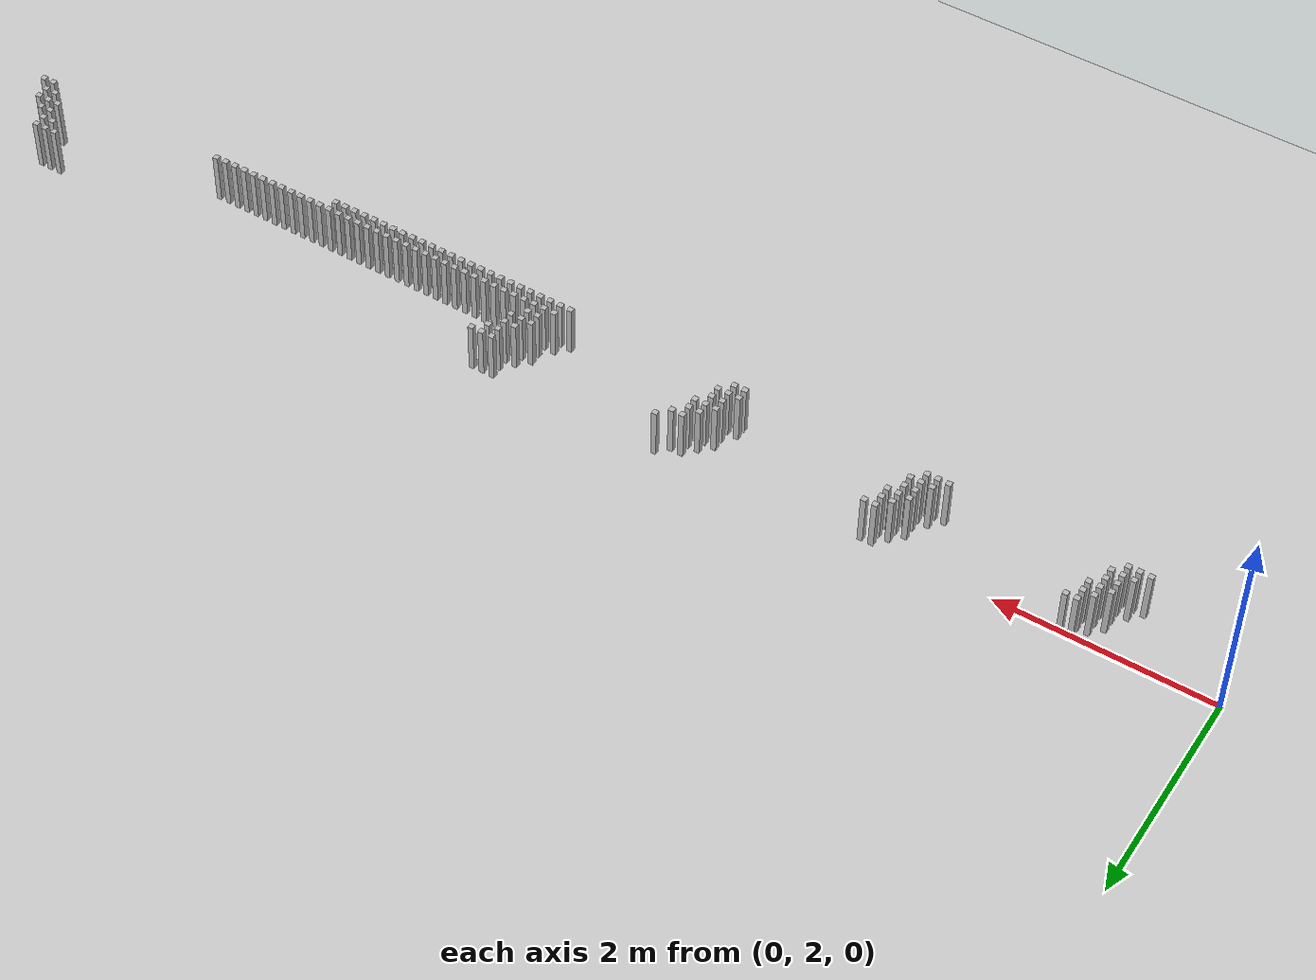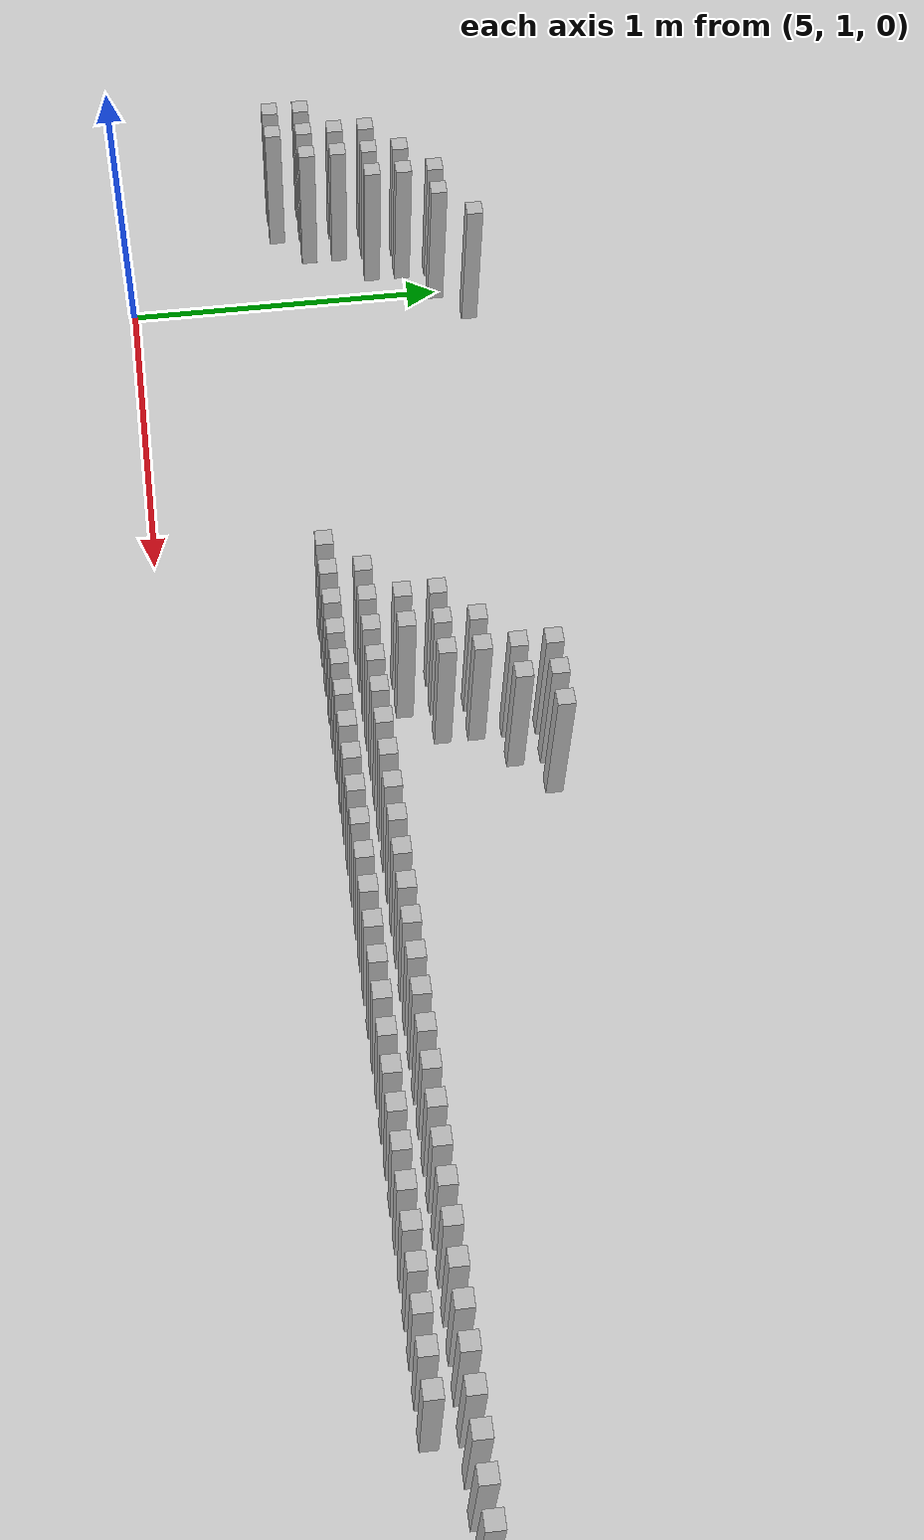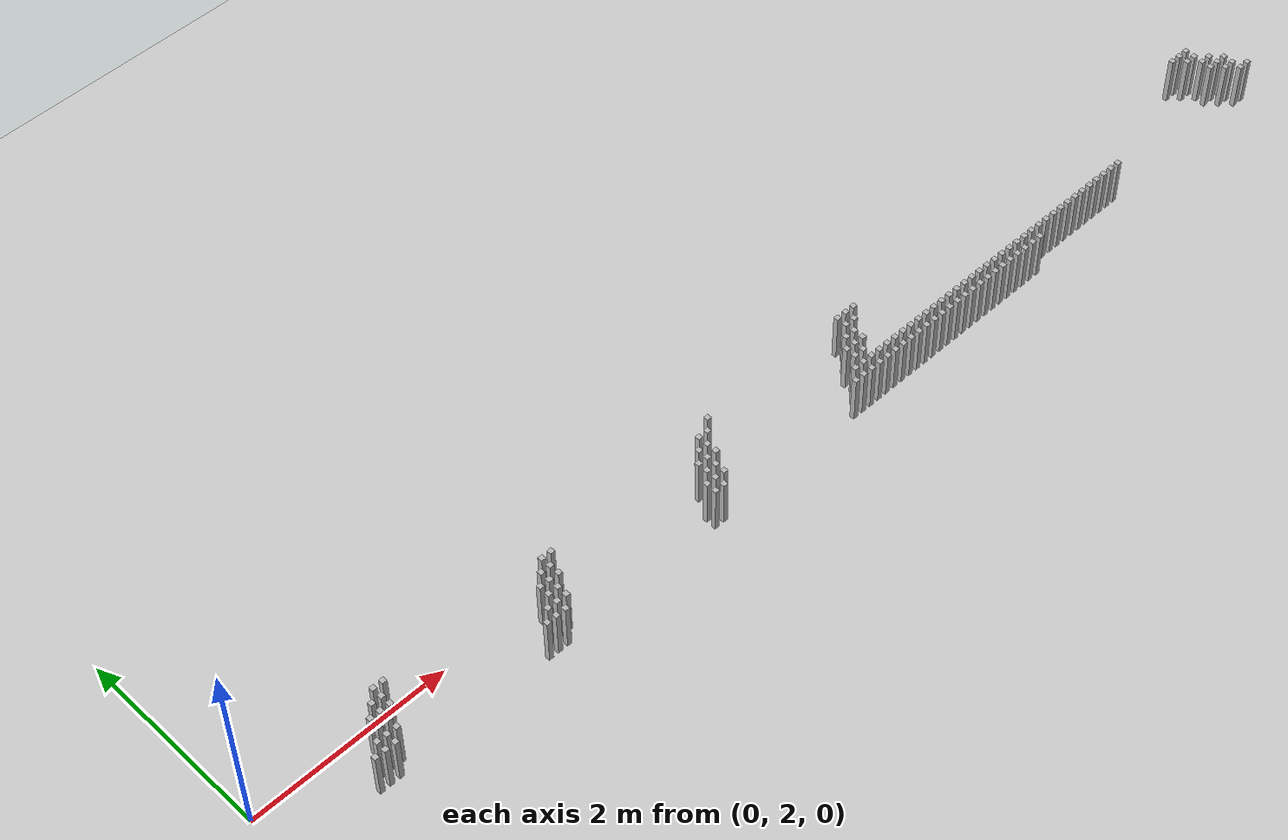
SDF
<sdf version="1.6">
 <world name="default_world">
  <include><uri>model://sun</uri></include>
  <include><uri>model://ground_plane</uri></include>
  <model name="wall_784">
   <static>true</static>
   <link name="link">
    <collision name="collision"><geometry><box><size>0.05 0.05 0.5</size></box></geometry></collision>
    <visual name="visual"><geometry><box><size>0.05 0.05 0.5</size></box></geometry></visual>
    <pose>5.1000000000000005 2.1 0.25 0 0 0</pose>
   </link>
  </model>
  <model name="wall_785">
   <static>true</static>
   <link name="link">
    <collision name="collision"><geometry><box><size>0.05 0.05 0.5</size></box></geometry></collision>
    <visual name="visual"><geometry><box><size>0.05 0.05 0.5</size></box></geometry></visual>
    <pose>6.7 2.1 0.25 0 0 0</pose>
   </link>
  </model>
  <model name="wall_786">
   <static>true</static>
   <link name="link">
    <collision name="collision"><geometry><box><size>0.05 0.05 0.5</size></box></geometry></collision>
    <visual name="visual"><geometry><box><size>0.05 0.05 0.5</size></box></geometry></visual>
    <pose>6.800000000000001 2.1 0.25 0 0 0</pose>
   </link>
  </model>
  <model name="wall_787">
   <static>true</static>
   <link name="link">
    <collision name="collision"><geometry><box><size>0.05 0.05 0.5</size></box></geometry></collision>
    <visual name="visual"><geometry><box><size>0.05 0.05 0.5</size></box></geometry></visual>
    <pose>6.9 2.1 0.25 0 0 0</pose>
   </link>
  </model>
  <model name="wall_788">
   <static>true</static>
   <link name="link">
    <collision name="collision"><geometry><box><size>0.05 0.05 0.5</size></box></geometry></collision>
    <visual name="visual"><geometry><box><size>0.05 0.05 0.5</size></box></geometry></visual>
    <pose>11.3 2.1 0.25 0 0 0</pose>
   </link>
  </model>
  <model name="wall_789">
   <static>true</static>
   <link name="link">
    <collision name="collision"><geometry><box><size>0.05 0.05 0.5</size></box></geometry></collision>
    <visual name="visual"><geometry><box><size>0.05 0.05 0.5</size></box></geometry></visual>
    <pose>11.4 2.1 0.25 0 0 0</pose>
   </link>
  </model>
  <model name="wall_790">
   <static>true</static>
   <link name="link">
    <collision name="collision"><geometry><box><size>0.05 0.05 0.5</size></box></geometry></collision>
    <visual name="visual"><geometry><box><size>0.05 0.05 0.5</size></box></geometry></visual>
    <pose>11.5 2.1 0.25 0 0 0</pose>
   </link>
  </model>
  <model name="wall_791">
   <static>true</static>
   <link name="link">
    <collision name="collision"><geometry><box><size>0.05 0.05 0.5</size></box></geometry></collision>
    <visual name="visual"><geometry><box><size>0.05 0.05 0.5</size></box></geometry></visual>
    <pose>1.3 2.0 0.25 0 0 0</pose>
   </link>
  </model>
  <model name="wall_792">
   <static>true</static>
   <link name="link">
    <collision name="collision"><geometry><box><size>0.05 0.05 0.5</size></box></geometry></collision>
    <visual name="visual"><geometry><box><size>0.05 0.05 0.5</size></box></geometry></visual>
    <pose>1.4000000000000001 2.0 0.25 0 0 0</pose>
   </link>
  </model>
  <model name="wall_793">
   <static>true</static>
   <link name="link">
    <collision name="collision"><geometry><box><size>0.05 0.05 0.5</size></box></geometry></collision>
    <visual name="visual"><geometry><box><size>0.05 0.05 0.5</size></box></geometry></visual>
    <pose>3.1 2.0 0.25 0 0 0</pose>
   </link>
  </model>
  <model name="wall_794">
   <static>true</static>
   <link name="link">
    <collision name="collision"><geometry><box><size>0.05 0.05 0.5</size></box></geometry></collision>
    <visual name="visual"><geometry><box><size>0.05 0.05 0.5</size></box></geometry></visual>
    <pose>3.2 2.0 0.25 0 0 0</pose>
   </link>
  </model>
  <model name="wall_795">
   <static>true</static>
   <link name="link">
    <collision name="collision"><geometry><box><size>0.05 0.05 0.5</size></box></geometry></collision>
    <visual name="visual"><geometry><box><size>0.05 0.05 0.5</size></box></geometry></visual>
    <pose>4.9 2.0 0.25 0 0 0</pose>
   </link>
  </model>
  <model name="wall_796">
   <static>true</static>
   <link name="link">
    <collision name="collision"><geometry><box><size>0.05 0.05 0.5</size></box></geometry></collision>
    <visual name="visual"><geometry><box><size>0.05 0.05 0.5</size></box></geometry></visual>
    <pose>5.0 2.0 0.25 0 0 0</pose>
   </link>
  </model>
  <model name="wall_797">
   <static>true</static>
   <link name="link">
    <collision name="collision"><geometry><box><size>0.05 0.05 0.5</size></box></geometry></collision>
    <visual name="visual"><geometry><box><size>0.05 0.05 0.5</size></box></geometry></visual>
    <pose>6.7 2.0 0.25 0 0 0</pose>
   </link>
  </model>
  <model name="wall_798">
   <static>true</static>
   <link name="link">
    <collision name="collision"><geometry><box><size>0.05 0.05 0.5</size></box></geometry></collision>
    <visual name="visual"><geometry><box><size>0.05 0.05 0.5</size></box></geometry></visual>
    <pose>6.800000000000001 2.0 0.25 0 0 0</pose>
   </link>
  </model>
  <model name="wall_799">
   <static>true</static>
   <link name="link">
    <collision name="collision"><geometry><box><size>0.05 0.05 0.5</size></box></geometry></collision>
    <visual name="visual"><geometry><box><size>0.05 0.05 0.5</size></box></geometry></visual>
    <pose>11.4 2.0 0.25 0 0 0</pose>
   </link>
  </model>
  <model name="wall_800">
   <static>true</static>
   <link name="link">
    <collision name="collision"><geometry><box><size>0.05 0.05 0.5</size></box></geometry></collision>
    <visual name="visual"><geometry><box><size>0.05 0.05 0.5</size></box></geometry></visual>
    <pose>11.5 2.0 0.25 0 0 0</pose>
   </link>
  </model>
  <model name="wall_801">
   <static>true</static>
   <link name="link">
    <collision name="collision"><geometry><box><size>0.05 0.05 0.5</size></box></geometry></collision>
    <visual name="visual"><geometry><box><size>0.05 0.05 0.5</size></box></geometry></visual>
    <pose>1.2000000000000002 1.9000000000000001 0.25 0 0 0</pose>
   </link>
  </model>
  <model name="wall_802">
   <static>true</static>
   <link name="link">
    <collision name="collision"><geometry><box><size>0.05 0.05 0.5</size></box></geometry></collision>
    <visual name="visual"><geometry><box><size>0.05 0.05 0.5</size></box></geometry></visual>
    <pose>1.3 1.9000000000000001 0.25 0 0 0</pose>
   </link>
  </model>
  <model name="wall_803">
   <static>true</static>
   <link name="link">
    <collision name="collision"><geometry><box><size>0.05 0.05 0.5</size></box></geometry></collision>
    <visual name="visual"><geometry><box><size>0.05 0.05 0.5</size></box></geometry></visual>
    <pose>3.0 1.9000000000000001 0.25 0 0 0</pose>
   </link>
  </model>
  <model name="wall_804">
   <static>true</static>
   <link name="link">
    <collision name="collision"><geometry><box><size>0.05 0.05 0.5</size></box></geometry></collision>
    <visual name="visual"><geometry><box><size>0.05 0.05 0.5</size></box></geometry></visual>
    <pose>3.1 1.9000000000000001 0.25 0 0 0</pose>
   </link>
  </model>
  <model name="wall_805">
   <static>true</static>
   <link name="link">
    <collision name="collision"><geometry><box><size>0.05 0.05 0.5</size></box></geometry></collision>
    <visual name="visual"><geometry><box><size>0.05 0.05 0.5</size></box></geometry></visual>
    <pose>4.800000000000001 1.9000000000000001 0.25 0 0 0</pose>
   </link>
  </model>
  <model name="wall_806">
   <static>true</static>
   <link name="link">
    <collision name="collision"><geometry><box><size>0.05 0.05 0.5</size></box></geometry></collision>
    <visual name="visual"><geometry><box><size>0.05 0.05 0.5</size></box></geometry></visual>
    <pose>4.9 1.9000000000000001 0.25 0 0 0</pose>
   </link>
  </model>
  <model name="wall_807">
   <static>true</static>
   <link name="link">
    <collision name="collision"><geometry><box><size>0.05 0.05 0.5</size></box></geometry></collision>
    <visual name="visual"><geometry><box><size>0.05 0.05 0.5</size></box></geometry></visual>
    <pose>6.6000000000000005 1.9000000000000001 0.25 0 0 0</pose>
   </link>
  </model>
  <model name="wall_808">
   <static>true</static>
   <link name="link">
    <collision name="collision"><geometry><box><size>0.05 0.05 0.5</size></box></geometry></collision>
    <visual name="visual"><geometry><box><size>0.05 0.05 0.5</size></box></geometry></visual>
    <pose>6.7 1.9000000000000001 0.25 0 0 0</pose>
   </link>
  </model>
  <model name="wall_809">
   <static>true</static>
   <link name="link">
    <collision name="collision"><geometry><box><size>0.05 0.05 0.5</size></box></geometry></collision>
    <visual name="visual"><geometry><box><size>0.05 0.05 0.5</size></box></geometry></visual>
    <pose>11.5 1.9000000000000001 0.25 0 0 0</pose>
   </link>
  </model>
  <model name="wall_810">
   <static>true</static>
   <link name="link">
    <collision name="collision"><geometry><box><size>0.05 0.05 0.5</size></box></geometry></collision>
    <visual name="visual"><geometry><box><size>0.05 0.05 0.5</size></box></geometry></visual>
    <pose>11.600000000000001 1.9000000000000001 0.25 0 0 0</pose>
   </link>
  </model>
  <model name="wall_811">
   <static>true</static>
   <link name="link">
    <collision name="collision"><geometry><box><size>0.05 0.05 0.5</size></box></geometry></collision>
    <visual name="visual"><geometry><box><size>0.05 0.05 0.5</size></box></geometry></visual>
    <pose>1.1 1.8 0.25 0 0 0</pose>
   </link>
  </model>
  <model name="wall_812">
   <static>true</static>
   <link name="link">
    <collision name="collision"><geometry><box><size>0.05 0.05 0.5</size></box></geometry></collision>
    <visual name="visual"><geometry><box><size>0.05 0.05 0.5</size></box></geometry></visual>
    <pose>1.2000000000000002 1.8 0.25 0 0 0</pose>
   </link>
  </model>
  <model name="wall_813">
   <static>true</static>
   <link name="link">
    <collision name="collision"><geometry><box><size>0.05 0.05 0.5</size></box></geometry></collision>
    <visual name="visual"><geometry><box><size>0.05 0.05 0.5</size></box></geometry></visual>
    <pose>1.3 1.8 0.25 0 0 0</pose>
   </link>
  </model>
  <model name="wall_814">
   <static>true</static>
   <link name="link">
    <collision name="collision"><geometry><box><size>0.05 0.05 0.5</size></box></geometry></collision>
    <visual name="visual"><geometry><box><size>0.05 0.05 0.5</size></box></geometry></visual>
    <pose>2.9000000000000004 1.8 0.25 0 0 0</pose>
   </link>
  </model>
  <model name="wall_815">
   <static>true</static>
   <link name="link">
    <collision name="collision"><geometry><box><size>0.05 0.05 0.5</size></box></geometry></collision>
    <visual name="visual"><geometry><box><size>0.05 0.05 0.5</size></box></geometry></visual>
    <pose>3.0 1.8 0.25 0 0 0</pose>
   </link>
  </model>
  <model name="wall_816">
   <static>true</static>
   <link name="link">
    <collision name="collision"><geometry><box><size>0.05 0.05 0.5</size></box></geometry></collision>
    <visual name="visual"><geometry><box><size>0.05 0.05 0.5</size></box></geometry></visual>
    <pose>3.1 1.8 0.25 0 0 0</pose>
   </link>
  </model>
  <model name="wall_817">
   <static>true</static>
   <link name="link">
    <collision name="collision"><geometry><box><size>0.05 0.05 0.5</size></box></geometry></collision>
    <visual name="visual"><geometry><box><size>0.05 0.05 0.5</size></box></geometry></visual>
    <pose>4.7 1.8 0.25 0 0 0</pose>
   </link>
  </model>
  <model name="wall_818">
   <static>true</static>
   <link name="link">
    <collision name="collision"><geometry><box><size>0.05 0.05 0.5</size></box></geometry></collision>
    <visual name="visual"><geometry><box><size>0.05 0.05 0.5</size></box></geometry></visual>
    <pose>4.800000000000001 1.8 0.25 0 0 0</pose>
   </link>
  </model>
  <model name="wall_819">
   <static>true</static>
   <link name="link">
    <collision name="collision"><geometry><box><size>0.05 0.05 0.5</size></box></geometry></collision>
    <visual name="visual"><geometry><box><size>0.05 0.05 0.5</size></box></geometry></visual>
    <pose>4.9 1.8 0.25 0 0 0</pose>
   </link>
  </model>
  <model name="wall_820">
   <static>true</static>
   <link name="link">
    <collision name="collision"><geometry><box><size>0.05 0.05 0.5</size></box></geometry></collision>
    <visual name="visual"><geometry><box><size>0.05 0.05 0.5</size></box></geometry></visual>
    <pose>6.5 1.8 0.25 0 0 0</pose>
   </link>
  </model>
  <model name="wall_821">
   <static>true</static>
   <link name="link">
    <collision name="collision"><geometry><box><size>0.05 0.05 0.5</size></box></geometry></collision>
    <visual name="visual"><geometry><box><size>0.05 0.05 0.5</size></box></geometry></visual>
    <pose>6.6000000000000005 1.8 0.25 0 0 0</pose>
   </link>
  </model>
  <model name="wall_822">
   <static>true</static>
   <link name="link">
    <collision name="collision"><geometry><box><size>0.05 0.05 0.5</size></box></geometry></collision>
    <visual name="visual"><geometry><box><size>0.05 0.05 0.5</size></box></geometry></visual>
    <pose>6.7 1.8 0.25 0 0 0</pose>
   </link>
  </model>
  <model name="wall_823">
   <static>true</static>
   <link name="link">
    <collision name="collision"><geometry><box><size>0.05 0.05 0.5</size></box></geometry></collision>
    <visual name="visual"><geometry><box><size>0.05 0.05 0.5</size></box></geometry></visual>
    <pose>11.5 1.8 0.25 0 0 0</pose>
   </link>
  </model>
  <model name="wall_824">
   <static>true</static>
   <link name="link">
    <collision name="collision"><geometry><box><size>0.05 0.05 0.5</size></box></geometry></collision>
    <visual name="visual"><geometry><box><size>0.05 0.05 0.5</size></box></geometry></visual>
    <pose>11.600000000000001 1.8 0.25 0 0 0</pose>
   </link>
  </model>
  <model name="wall_825">
   <static>true</static>
   <link name="link">
    <collision name="collision"><geometry><box><size>0.05 0.05 0.5</size></box></geometry></collision>
    <visual name="visual"><geometry><box><size>0.05 0.05 0.5</size></box></geometry></visual>
    <pose>11.700000000000001 1.8 0.25 0 0 0</pose>
   </link>
  </model>
  <model name="wall_826">
   <static>true</static>
   <link name="link">
    <collision name="collision"><geometry><box><size>0.05 0.05 0.5</size></box></geometry></collision>
    <visual name="visual"><geometry><box><size>0.05 0.05 0.5</size></box></geometry></visual>
    <pose>1.1 1.7000000000000002 0.25 0 0 0</pose>
   </link>
  </model>
  <model name="wall_827">
   <static>true</static>
   <link name="link">
    <collision name="collision"><geometry><box><size>0.05 0.05 0.5</size></box></geometry></collision>
    <visual name="visual"><geometry><box><size>0.05 0.05 0.5</size></box></geometry></visual>
    <pose>1.2000000000000002 1.7000000000000002 0.25 0 0 0</pose>
   </link>
  </model>
  <model name="wall_828">
   <static>true</static>
   <link name="link">
    <collision name="collision"><geometry><box><size>0.05 0.05 0.5</size></box></geometry></collision>
    <visual name="visual"><geometry><box><size>0.05 0.05 0.5</size></box></geometry></visual>
    <pose>2.9000000000000004 1.7000000000000002 0.25 0 0 0</pose>
   </link>
  </model>
  <model name="wall_829">
   <static>true</static>
   <link name="link">
    <collision name="collision"><geometry><box><size>0.05 0.05 0.5</size></box></geometry></collision>
    <visual name="visual"><geometry><box><size>0.05 0.05 0.5</size></box></geometry></visual>
    <pose>3.0 1.7000000000000002 0.25 0 0 0</pose>
   </link>
  </model>
  <model name="wall_830">
   <static>true</static>
   <link name="link">
    <collision name="collision"><geometry><box><size>0.05 0.05 0.5</size></box></geometry></collision>
    <visual name="visual"><geometry><box><size>0.05 0.05 0.5</size></box></geometry></visual>
    <pose>4.7 1.7000000000000002 0.25 0 0 0</pose>
   </link>
  </model>
  <model name="wall_831">
   <static>true</static>
   <link name="link">
    <collision name="collision"><geometry><box><size>0.05 0.05 0.5</size></box></geometry></collision>
    <visual name="visual"><geometry><box><size>0.05 0.05 0.5</size></box></geometry></visual>
    <pose>4.800000000000001 1.7000000000000002 0.25 0 0 0</pose>
   </link>
  </model>
  <model name="wall_832">
   <static>true</static>
   <link name="link">
    <collision name="collision"><geometry><box><size>0.05 0.05 0.5</size></box></geometry></collision>
    <visual name="visual"><geometry><box><size>0.05 0.05 0.5</size></box></geometry></visual>
    <pose>6.5 1.7000000000000002 0.25 0 0 0</pose>
   </link>
  </model>
  <model name="wall_833">
   <static>true</static>
   <link name="link">
    <collision name="collision"><geometry><box><size>0.05 0.05 0.5</size></box></geometry></collision>
    <visual name="visual"><geometry><box><size>0.05 0.05 0.5</size></box></geometry></visual>
    <pose>6.6000000000000005 1.7000000000000002 0.25 0 0 0</pose>
   </link>
  </model>
  <model name="wall_834">
   <static>true</static>
   <link name="link">
    <collision name="collision"><geometry><box><size>0.05 0.05 0.5</size></box></geometry></collision>
    <visual name="visual"><geometry><box><size>0.05 0.05 0.5</size></box></geometry></visual>
    <pose>11.600000000000001 1.7000000000000002 0.25 0 0 0</pose>
   </link>
  </model>
  <model name="wall_835">
   <static>true</static>
   <link name="link">
    <collision name="collision"><geometry><box><size>0.05 0.05 0.5</size></box></geometry></collision>
    <visual name="visual"><geometry><box><size>0.05 0.05 0.5</size></box></geometry></visual>
    <pose>11.700000000000001 1.7000000000000002 0.25 0 0 0</pose>
   </link>
  </model>
  <model name="wall_836">
   <static>true</static>
   <link name="link">
    <collision name="collision"><geometry><box><size>0.05 0.05 0.5</size></box></geometry></collision>
    <visual name="visual"><geometry><box><size>0.05 0.05 0.5</size></box></geometry></visual>
    <pose>1.0 1.6 0.25 0 0 0</pose>
   </link>
  </model>
  <model name="wall_837">
   <static>true</static>
   <link name="link">
    <collision name="collision"><geometry><box><size>0.05 0.05 0.5</size></box></geometry></collision>
    <visual name="visual"><geometry><box><size>0.05 0.05 0.5</size></box></geometry></visual>
    <pose>1.1 1.6 0.25 0 0 0</pose>
   </link>
  </model>
  <model name="wall_838">
   <static>true</static>
   <link name="link">
    <collision name="collision"><geometry><box><size>0.05 0.05 0.5</size></box></geometry></collision>
    <visual name="visual"><geometry><box><size>0.05 0.05 0.5</size></box></geometry></visual>
    <pose>1.2000000000000002 1.6 0.25 0 0 0</pose>
   </link>
  </model>
  <model name="wall_839">
   <static>true</static>
   <link name="link">
    <collision name="collision"><geometry><box><size>0.05 0.05 0.5</size></box></geometry></collision>
    <visual name="visual"><geometry><box><size>0.05 0.05 0.5</size></box></geometry></visual>
    <pose>2.8000000000000003 1.6 0.25 0 0 0</pose>
   </link>
  </model>
  <model name="wall_840">
   <static>true</static>
   <link name="link">
    <collision name="collision"><geometry><box><size>0.05 0.05 0.5</size></box></geometry></collision>
    <visual name="visual"><geometry><box><size>0.05 0.05 0.5</size></box></geometry></visual>
    <pose>2.9000000000000004 1.6 0.25 0 0 0</pose>
   </link>
  </model>
  <model name="wall_841">
   <static>true</static>
   <link name="link">
    <collision name="collision"><geometry><box><size>0.05 0.05 0.5</size></box></geometry></collision>
    <visual name="visual"><geometry><box><size>0.05 0.05 0.5</size></box></geometry></visual>
    <pose>3.0 1.6 0.25 0 0 0</pose>
   </link>
  </model>
  <model name="wall_842">
   <static>true</static>
   <link name="link">
    <collision name="collision"><geometry><box><size>0.05 0.05 0.5</size></box></geometry></collision>
    <visual name="visual"><geometry><box><size>0.05 0.05 0.5</size></box></geometry></visual>
    <pose>4.6000000000000005 1.6 0.25 0 0 0</pose>
   </link>
  </model>
  <model name="wall_843">
   <static>true</static>
   <link name="link">
    <collision name="collision"><geometry><box><size>0.05 0.05 0.5</size></box></geometry></collision>
    <visual name="visual"><geometry><box><size>0.05 0.05 0.5</size></box></geometry></visual>
    <pose>4.7 1.6 0.25 0 0 0</pose>
   </link>
  </model>
  <model name="wall_844">
   <static>true</static>
   <link name="link">
    <collision name="collision"><geometry><box><size>0.05 0.05 0.5</size></box></geometry></collision>
    <visual name="visual"><geometry><box><size>0.05 0.05 0.5</size></box></geometry></visual>
    <pose>4.800000000000001 1.6 0.25 0 0 0</pose>
   </link>
  </model>
  <model name="wall_845">
   <static>true</static>
   <link name="link">
    <collision name="collision"><geometry><box><size>0.05 0.05 0.5</size></box></geometry></collision>
    <visual name="visual"><geometry><box><size>0.05 0.05 0.5</size></box></geometry></visual>
    <pose>6.4 1.6 0.25 0 0 0</pose>
   </link>
  </model>
  <model name="wall_846">
   <static>true</static>
   <link name="link">
    <collision name="collision"><geometry><box><size>0.05 0.05 0.5</size></box></geometry></collision>
    <visual name="visual"><geometry><box><size>0.05 0.05 0.5</size></box></geometry></visual>
    <pose>6.5 1.6 0.25 0 0 0</pose>
   </link>
  </model>
  <model name="wall_847">
   <static>true</static>
   <link name="link">
    <collision name="collision"><geometry><box><size>0.05 0.05 0.5</size></box></geometry></collision>
    <visual name="visual"><geometry><box><size>0.05 0.05 0.5</size></box></geometry></visual>
    <pose>6.6000000000000005 1.6 0.25 0 0 0</pose>
   </link>
  </model>
  <model name="wall_848">
   <static>true</static>
   <link name="link">
    <collision name="collision"><geometry><box><size>0.05 0.05 0.5</size></box></geometry></collision>
    <visual name="visual"><geometry><box><size>0.05 0.05 0.5</size></box></geometry></visual>
    <pose>6.7 1.6 0.25 0 0 0</pose>
   </link>
  </model>
  <model name="wall_849">
   <static>true</static>
   <link name="link">
    <collision name="collision"><geometry><box><size>0.05 0.05 0.5</size></box></geometry></collision>
    <visual name="visual"><geometry><box><size>0.05 0.05 0.5</size></box></geometry></visual>
    <pose>6.800000000000001 1.6 0.25 0 0 0</pose>
   </link>
  </model>
  <model name="wall_850">
   <static>true</static>
   <link name="link">
    <collision name="collision"><geometry><box><size>0.05 0.05 0.5</size></box></geometry></collision>
    <visual name="visual"><geometry><box><size>0.05 0.05 0.5</size></box></geometry></visual>
    <pose>6.9 1.6 0.25 0 0 0</pose>
   </link>
  </model>
  <model name="wall_851">
   <static>true</static>
   <link name="link">
    <collision name="collision"><geometry><box><size>0.05 0.05 0.5</size></box></geometry></collision>
    <visual name="visual"><geometry><box><size>0.05 0.05 0.5</size></box></geometry></visual>
    <pose>7.0 1.6 0.25 0 0 0</pose>
   </link>
  </model>
  <model name="wall_852">
   <static>true</static>
   <link name="link">
    <collision name="collision"><geometry><box><size>0.05 0.05 0.5</size></box></geometry></collision>
    <visual name="visual"><geometry><box><size>0.05 0.05 0.5</size></box></geometry></visual>
    <pose>7.1000000000000005 1.6 0.25 0 0 0</pose>
   </link>
  </model>
  <model name="wall_853">
   <static>true</static>
   <link name="link">
    <collision name="collision"><geometry><box><size>0.05 0.05 0.5</size></box></geometry></collision>
    <visual name="visual"><geometry><box><size>0.05 0.05 0.5</size></box></geometry></visual>
    <pose>7.2 1.6 0.25 0 0 0</pose>
   </link>
  </model>
  <model name="wall_854">
   <static>true</static>
   <link name="link">
    <collision name="collision"><geometry><box><size>0.05 0.05 0.5</size></box></geometry></collision>
    <visual name="visual"><geometry><box><size>0.05 0.05 0.5</size></box></geometry></visual>
    <pose>7.300000000000001 1.6 0.25 0 0 0</pose>
   </link>
  </model>
  <model name="wall_855">
   <static>true</static>
   <link name="link">
    <collision name="collision"><geometry><box><size>0.05 0.05 0.5</size></box></geometry></collision>
    <visual name="visual"><geometry><box><size>0.05 0.05 0.5</size></box></geometry></visual>
    <pose>7.4 1.6 0.25 0 0 0</pose>
   </link>
  </model>
  <model name="wall_856">
   <static>true</static>
   <link name="link">
    <collision name="collision"><geometry><box><size>0.05 0.05 0.5</size></box></geometry></collision>
    <visual name="visual"><geometry><box><size>0.05 0.05 0.5</size></box></geometry></visual>
    <pose>7.5 1.6 0.25 0 0 0</pose>
   </link>
  </model>
  <model name="wall_857">
   <static>true</static>
   <link name="link">
    <collision name="collision"><geometry><box><size>0.05 0.05 0.5</size></box></geometry></collision>
    <visual name="visual"><geometry><box><size>0.05 0.05 0.5</size></box></geometry></visual>
    <pose>7.6000000000000005 1.6 0.25 0 0 0</pose>
   </link>
  </model>
  <model name="wall_858">
   <static>true</static>
   <link name="link">
    <collision name="collision"><geometry><box><size>0.05 0.05 0.5</size></box></geometry></collision>
    <visual name="visual"><geometry><box><size>0.05 0.05 0.5</size></box></geometry></visual>
    <pose>7.7 1.6 0.25 0 0 0</pose>
   </link>
  </model>
  <model name="wall_859">
   <static>true</static>
   <link name="link">
    <collision name="collision"><geometry><box><size>0.05 0.05 0.5</size></box></geometry></collision>
    <visual name="visual"><geometry><box><size>0.05 0.05 0.5</size></box></geometry></visual>
    <pose>7.800000000000001 1.6 0.25 0 0 0</pose>
   </link>
  </model>
  <model name="wall_860">
   <static>true</static>
   <link name="link">
    <collision name="collision"><geometry><box><size>0.05 0.05 0.5</size></box></geometry></collision>
    <visual name="visual"><geometry><box><size>0.05 0.05 0.5</size></box></geometry></visual>
    <pose>7.9 1.6 0.25 0 0 0</pose>
   </link>
  </model>
  <model name="wall_861">
   <static>true</static>
   <link name="link">
    <collision name="collision"><geometry><box><size>0.05 0.05 0.5</size></box></geometry></collision>
    <visual name="visual"><geometry><box><size>0.05 0.05 0.5</size></box></geometry></visual>
    <pose>8.0 1.6 0.25 0 0 0</pose>
   </link>
  </model>
  <model name="wall_862">
   <static>true</static>
   <link name="link">
    <collision name="collision"><geometry><box><size>0.05 0.05 0.5</size></box></geometry></collision>
    <visual name="visual"><geometry><box><size>0.05 0.05 0.5</size></box></geometry></visual>
    <pose>8.1 1.6 0.25 0 0 0</pose>
   </link>
  </model>
  <model name="wall_863">
   <static>true</static>
   <link name="link">
    <collision name="collision"><geometry><box><size>0.05 0.05 0.5</size></box></geometry></collision>
    <visual name="visual"><geometry><box><size>0.05 0.05 0.5</size></box></geometry></visual>
    <pose>8.200000000000001 1.6 0.25 0 0 0</pose>
   </link>
  </model>
  <model name="wall_864">
   <static>true</static>
   <link name="link">
    <collision name="collision"><geometry><box><size>0.05 0.05 0.5</size></box></geometry></collision>
    <visual name="visual"><geometry><box><size>0.05 0.05 0.5</size></box></geometry></visual>
    <pose>8.3 1.6 0.25 0 0 0</pose>
   </link>
  </model>
  <model name="wall_865">
   <static>true</static>
   <link name="link">
    <collision name="collision"><geometry><box><size>0.05 0.05 0.5</size></box></geometry></collision>
    <visual name="visual"><geometry><box><size>0.05 0.05 0.5</size></box></geometry></visual>
    <pose>8.4 1.6 0.25 0 0 0</pose>
   </link>
  </model>
  <model name="wall_866">
   <static>true</static>
   <link name="link">
    <collision name="collision"><geometry><box><size>0.05 0.05 0.5</size></box></geometry></collision>
    <visual name="visual"><geometry><box><size>0.05 0.05 0.5</size></box></geometry></visual>
    <pose>8.5 1.6 0.25 0 0 0</pose>
   </link>
  </model>
  <model name="wall_867">
   <static>true</static>
   <link name="link">
    <collision name="collision"><geometry><box><size>0.05 0.05 0.5</size></box></geometry></collision>
    <visual name="visual"><geometry><box><size>0.05 0.05 0.5</size></box></geometry></visual>
    <pose>8.6 1.6 0.25 0 0 0</pose>
   </link>
  </model>
  <model name="wall_868">
   <static>true</static>
   <link name="link">
    <collision name="collision"><geometry><box><size>0.05 0.05 0.5</size></box></geometry></collision>
    <visual name="visual"><geometry><box><size>0.05 0.05 0.5</size></box></geometry></visual>
    <pose>8.700000000000001 1.6 0.25 0 0 0</pose>
   </link>
  </model>
  <model name="wall_869">
   <static>true</static>
   <link name="link">
    <collision name="collision"><geometry><box><size>0.05 0.05 0.5</size></box></geometry></collision>
    <visual name="visual"><geometry><box><size>0.05 0.05 0.5</size></box></geometry></visual>
    <pose>8.8 1.6 0.25 0 0 0</pose>
   </link>
  </model>
  <model name="wall_870">
   <static>true</static>
   <link name="link">
    <collision name="collision"><geometry><box><size>0.05 0.05 0.5</size></box></geometry></collision>
    <visual name="visual"><geometry><box><size>0.05 0.05 0.5</size></box></geometry></visual>
    <pose>8.9 1.6 0.25 0 0 0</pose>
   </link>
  </model>
  <model name="wall_871">
   <static>true</static>
   <link name="link">
    <collision name="collision"><geometry><box><size>0.05 0.05 0.5</size></box></geometry></collision>
    <visual name="visual"><geometry><box><size>0.05 0.05 0.5</size></box></geometry></visual>
    <pose>9.0 1.6 0.25 0 0 0</pose>
   </link>
  </model>
  <model name="wall_872">
   <static>true</static>
   <link name="link">
    <collision name="collision"><geometry><box><size>0.05 0.05 0.5</size></box></geometry></collision>
    <visual name="visual"><geometry><box><size>0.05 0.05 0.5</size></box></geometry></visual>
    <pose>9.1 1.6 0.25 0 0 0</pose>
   </link>
  </model>
  <model name="wall_873">
   <static>true</static>
   <link name="link">
    <collision name="collision"><geometry><box><size>0.05 0.05 0.5</size></box></geometry></collision>
    <visual name="visual"><geometry><box><size>0.05 0.05 0.5</size></box></geometry></visual>
    <pose>9.200000000000001 1.6 0.25 0 0 0</pose>
   </link>
  </model>
  <model name="wall_874">
   <static>true</static>
   <link name="link">
    <collision name="collision"><geometry><box><size>0.05 0.05 0.5</size></box></geometry></collision>
    <visual name="visual"><geometry><box><size>0.05 0.05 0.5</size></box></geometry></visual>
    <pose>9.3 1.6 0.25 0 0 0</pose>
   </link>
  </model>
  <model name="wall_875">
   <static>true</static>
   <link name="link">
    <collision name="collision"><geometry><box><size>0.05 0.05 0.5</size></box></geometry></collision>
    <visual name="visual"><geometry><box><size>0.05 0.05 0.5</size></box></geometry></visual>
    <pose>9.4 1.6 0.25 0 0 0</pose>
   </link>
  </model>
  <model name="wall_876">
   <static>true</static>
   <link name="link">
    <collision name="collision"><geometry><box><size>0.05 0.05 0.5</size></box></geometry></collision>
    <visual name="visual"><geometry><box><size>0.05 0.05 0.5</size></box></geometry></visual>
    <pose>9.5 1.6 0.25 0 0 0</pose>
   </link>
  </model>
  <model name="wall_877">
   <static>true</static>
   <link name="link">
    <collision name="collision"><geometry><box><size>0.05 0.05 0.5</size></box></geometry></collision>
    <visual name="visual"><geometry><box><size>0.05 0.05 0.5</size></box></geometry></visual>
    <pose>9.600000000000001 1.6 0.25 0 0 0</pose>
   </link>
  </model>
  <model name="wall_878">
   <static>true</static>
   <link name="link">
    <collision name="collision"><geometry><box><size>0.05 0.05 0.5</size></box></geometry></collision>
    <visual name="visual"><geometry><box><size>0.05 0.05 0.5</size></box></geometry></visual>
    <pose>9.700000000000001 1.6 0.25 0 0 0</pose>
   </link>
  </model>
  <model name="wall_879">
   <static>true</static>
   <link name="link">
    <collision name="collision"><geometry><box><size>0.05 0.05 0.5</size></box></geometry></collision>
    <visual name="visual"><geometry><box><size>0.05 0.05 0.5</size></box></geometry></visual>
    <pose>9.8 1.6 0.25 0 0 0</pose>
   </link>
  </model>
  <model name="wall_880">
   <static>true</static>
   <link name="link">
    <collision name="collision"><geometry><box><size>0.05 0.05 0.5</size></box></geometry></collision>
    <visual name="visual"><geometry><box><size>0.05 0.05 0.5</size></box></geometry></visual>
    <pose>9.9 1.6 0.25 0 0 0</pose>
   </link>
  </model>
  <model name="wall_881">
   <static>true</static>
   <link name="link">
    <collision name="collision"><geometry><box><size>0.05 0.05 0.5</size></box></geometry></collision>
    <visual name="visual"><geometry><box><size>0.05 0.05 0.5</size></box></geometry></visual>
    <pose>11.700000000000001 1.6 0.25 0 0 0</pose>
   </link>
  </model>
  <model name="wall_882">
   <static>true</static>
   <link name="link">
    <collision name="collision"><geometry><box><size>0.05 0.05 0.5</size></box></geometry></collision>
    <visual name="visual"><geometry><box><size>0.05 0.05 0.5</size></box></geometry></visual>
    <pose>11.8 1.6 0.25 0 0 0</pose>
   </link>
  </model>
  <model name="wall_883">
   <static>true</static>
   <link name="link">
    <collision name="collision"><geometry><box><size>0.05 0.05 0.5</size></box></geometry></collision>
    <visual name="visual"><geometry><box><size>0.05 0.05 0.5</size></box></geometry></visual>
    <pose>0.9 1.5 0.25 0 0 0</pose>
   </link>
  </model>
  <model name="wall_884">
   <static>true</static>
   <link name="link">
    <collision name="collision"><geometry><box><size>0.05 0.05 0.5</size></box></geometry></collision>
    <visual name="visual"><geometry><box><size>0.05 0.05 0.5</size></box></geometry></visual>
    <pose>1.0 1.5 0.25 0 0 0</pose>
   </link>
  </model>
  <model name="wall_885">
   <static>true</static>
   <link name="link">
    <collision name="collision"><geometry><box><size>0.05 0.05 0.5</size></box></geometry></collision>
    <visual name="visual"><geometry><box><size>0.05 0.05 0.5</size></box></geometry></visual>
    <pose>1.1 1.5 0.25 0 0 0</pose>
   </link>
  </model>
  <model name="wall_886">
   <static>true</static>
   <link name="link">
    <collision name="collision"><geometry><box><size>0.05 0.05 0.5</size></box></geometry></collision>
    <visual name="visual"><geometry><box><size>0.05 0.05 0.5</size></box></geometry></visual>
    <pose>2.7 1.5 0.25 0 0 0</pose>
   </link>
  </model>
  <model name="wall_887">
   <static>true</static>
   <link name="link">
    <collision name="collision"><geometry><box><size>0.05 0.05 0.5</size></box></geometry></collision>
    <visual name="visual"><geometry><box><size>0.05 0.05 0.5</size></box></geometry></visual>
    <pose>2.8000000000000003 1.5 0.25 0 0 0</pose>
   </link>
  </model>
  <model name="wall_888">
   <static>true</static>
   <link name="link">
    <collision name="collision"><geometry><box><size>0.05 0.05 0.5</size></box></geometry></collision>
    <visual name="visual"><geometry><box><size>0.05 0.05 0.5</size></box></geometry></visual>
    <pose>2.9000000000000004 1.5 0.25 0 0 0</pose>
   </link>
  </model>
  <model name="wall_889">
   <static>true</static>
   <link name="link">
    <collision name="collision"><geometry><box><size>0.05 0.05 0.5</size></box></geometry></collision>
    <visual name="visual"><geometry><box><size>0.05 0.05 0.5</size></box></geometry></visual>
    <pose>4.6000000000000005 1.5 0.25 0 0 0</pose>
   </link>
  </model>
  <model name="wall_890">
   <static>true</static>
   <link name="link">
    <collision name="collision"><geometry><box><size>0.05 0.05 0.5</size></box></geometry></collision>
    <visual name="visual"><geometry><box><size>0.05 0.05 0.5</size></box></geometry></visual>
    <pose>4.7 1.5 0.25 0 0 0</pose>
   </link>
  </model>
  <model name="wall_891">
   <static>true</static>
   <link name="link">
    <collision name="collision"><geometry><box><size>0.05 0.05 0.5</size></box></geometry></collision>
    <visual name="visual"><geometry><box><size>0.05 0.05 0.5</size></box></geometry></visual>
    <pose>6.300000000000001 1.5 0.25 0 0 0</pose>
   </link>
  </model>
  <model name="wall_892">
   <static>true</static>
   <link name="link">
    <collision name="collision"><geometry><box><size>0.05 0.05 0.5</size></box></geometry></collision>
    <visual name="visual"><geometry><box><size>0.05 0.05 0.5</size></box></geometry></visual>
    <pose>6.4 1.5 0.25 0 0 0</pose>
   </link>
  </model>
  <model name="wall_893">
   <static>true</static>
   <link name="link">
    <collision name="collision"><geometry><box><size>0.05 0.05 0.5</size></box></geometry></collision>
    <visual name="visual"><geometry><box><size>0.05 0.05 0.5</size></box></geometry></visual>
    <pose>6.5 1.5 0.25 0 0 0</pose>
   </link>
  </model>
  <model name="wall_894">
   <static>true</static>
   <link name="link">
    <collision name="collision"><geometry><box><size>0.05 0.05 0.5</size></box></geometry></collision>
    <visual name="visual"><geometry><box><size>0.05 0.05 0.5</size></box></geometry></visual>
    <pose>6.6000000000000005 1.5 0.25 0 0 0</pose>
   </link>
  </model>
  <model name="wall_895">
   <static>true</static>
   <link name="link">
    <collision name="collision"><geometry><box><size>0.05 0.05 0.5</size></box></geometry></collision>
    <visual name="visual"><geometry><box><size>0.05 0.05 0.5</size></box></geometry></visual>
    <pose>6.7 1.5 0.25 0 0 0</pose>
   </link>
  </model>
  <model name="wall_896">
   <static>true</static>
   <link name="link">
    <collision name="collision"><geometry><box><size>0.05 0.05 0.5</size></box></geometry></collision>
    <visual name="visual"><geometry><box><size>0.05 0.05 0.5</size></box></geometry></visual>
    <pose>6.800000000000001 1.5 0.25 0 0 0</pose>
   </link>
  </model>
  <model name="wall_897">
   <static>true</static>
   <link name="link">
    <collision name="collision"><geometry><box><size>0.05 0.05 0.5</size></box></geometry></collision>
    <visual name="visual"><geometry><box><size>0.05 0.05 0.5</size></box></geometry></visual>
    <pose>6.9 1.5 0.25 0 0 0</pose>
   </link>
  </model>
  <model name="wall_898">
   <static>true</static>
   <link name="link">
    <collision name="collision"><geometry><box><size>0.05 0.05 0.5</size></box></geometry></collision>
    <visual name="visual"><geometry><box><size>0.05 0.05 0.5</size></box></geometry></visual>
    <pose>7.0 1.5 0.25 0 0 0</pose>
   </link>
  </model>
  <model name="wall_899">
   <static>true</static>
   <link name="link">
    <collision name="collision"><geometry><box><size>0.05 0.05 0.5</size></box></geometry></collision>
    <visual name="visual"><geometry><box><size>0.05 0.05 0.5</size></box></geometry></visual>
    <pose>7.1000000000000005 1.5 0.25 0 0 0</pose>
   </link>
  </model>
  <model name="wall_900">
   <static>true</static>
   <link name="link">
    <collision name="collision"><geometry><box><size>0.05 0.05 0.5</size></box></geometry></collision>
    <visual name="visual"><geometry><box><size>0.05 0.05 0.5</size></box></geometry></visual>
    <pose>7.2 1.5 0.25 0 0 0</pose>
   </link>
  </model>
  <model name="wall_901">
   <static>true</static>
   <link name="link">
    <collision name="collision"><geometry><box><size>0.05 0.05 0.5</size></box></geometry></collision>
    <visual name="visual"><geometry><box><size>0.05 0.05 0.5</size></box></geometry></visual>
    <pose>7.300000000000001 1.5 0.25 0 0 0</pose>
   </link>
  </model>
  <model name="wall_902">
   <static>true</static>
   <link name="link">
    <collision name="collision"><geometry><box><size>0.05 0.05 0.5</size></box></geometry></collision>
    <visual name="visual"><geometry><box><size>0.05 0.05 0.5</size></box></geometry></visual>
    <pose>7.4 1.5 0.25 0 0 0</pose>
   </link>
  </model>
  <model name="wall_903">
   <static>true</static>
   <link name="link">
    <collision name="collision"><geometry><box><size>0.05 0.05 0.5</size></box></geometry></collision>
    <visual name="visual"><geometry><box><size>0.05 0.05 0.5</size></box></geometry></visual>
    <pose>7.5 1.5 0.25 0 0 0</pose>
   </link>
  </model>
  <model name="wall_904">
   <static>true</static>
   <link name="link">
    <collision name="collision"><geometry><box><size>0.05 0.05 0.5</size></box></geometry></collision>
    <visual name="visual"><geometry><box><size>0.05 0.05 0.5</size></box></geometry></visual>
    <pose>7.6000000000000005 1.5 0.25 0 0 0</pose>
   </link>
  </model>
  <model name="wall_905">
   <static>true</static>
   <link name="link">
    <collision name="collision"><geometry><box><size>0.05 0.05 0.5</size></box></geometry></collision>
    <visual name="visual"><geometry><box><size>0.05 0.05 0.5</size></box></geometry></visual>
    <pose>7.7 1.5 0.25 0 0 0</pose>
   </link>
  </model>
  <model name="wall_906">
   <static>true</static>
   <link name="link">
    <collision name="collision"><geometry><box><size>0.05 0.05 0.5</size></box></geometry></collision>
    <visual name="visual"><geometry><box><size>0.05 0.05 0.5</size></box></geometry></visual>
    <pose>7.800000000000001 1.5 0.25 0 0 0</pose>
   </link>
  </model>
  <model name="wall_907">
   <static>true</static>
   <link name="link">
    <collision name="collision"><geometry><box><size>0.05 0.05 0.5</size></box></geometry></collision>
    <visual name="visual"><geometry><box><size>0.05 0.05 0.5</size></box></geometry></visual>
    <pose>7.9 1.5 0.25 0 0 0</pose>
   </link>
  </model>
  <model name="wall_908">
   <static>true</static>
   <link name="link">
    <collision name="collision"><geometry><box><size>0.05 0.05 0.5</size></box></geometry></collision>
    <visual name="visual"><geometry><box><size>0.05 0.05 0.5</size></box></geometry></visual>
    <pose>8.0 1.5 0.25 0 0 0</pose>
   </link>
  </model>
  <model name="wall_909">
   <static>true</static>
   <link name="link">
    <collision name="collision"><geometry><box><size>0.05 0.05 0.5</size></box></geometry></collision>
    <visual name="visual"><geometry><box><size>0.05 0.05 0.5</size></box></geometry></visual>
    <pose>8.1 1.5 0.25 0 0 0</pose>
   </link>
  </model>
  <model name="wall_910">
   <static>true</static>
   <link name="link">
    <collision name="collision"><geometry><box><size>0.05 0.05 0.5</size></box></geometry></collision>
    <visual name="visual"><geometry><box><size>0.05 0.05 0.5</size></box></geometry></visual>
    <pose>8.200000000000001 1.5 0.25 0 0 0</pose>
   </link>
  </model>
  <model name="wall_911">
   <static>true</static>
   <link name="link">
    <collision name="collision"><geometry><box><size>0.05 0.05 0.5</size></box></geometry></collision>
    <visual name="visual"><geometry><box><size>0.05 0.05 0.5</size></box></geometry></visual>
    <pose>8.3 1.5 0.25 0 0 0</pose>
   </link>
  </model>
  <model name="wall_912">
   <static>true</static>
   <link name="link">
    <collision name="collision"><geometry><box><size>0.05 0.05 0.5</size></box></geometry></collision>
    <visual name="visual"><geometry><box><size>0.05 0.05 0.5</size></box></geometry></visual>
    <pose>8.4 1.5 0.25 0 0 0</pose>
   </link>
  </model>
  <model name="wall_913">
   <static>true</static>
   <link name="link">
    <collision name="collision"><geometry><box><size>0.05 0.05 0.5</size></box></geometry></collision>
    <visual name="visual"><geometry><box><size>0.05 0.05 0.5</size></box></geometry></visual>
    <pose>8.5 1.5 0.25 0 0 0</pose>
   </link>
  </model>
  <model name="wall_914">
   <static>true</static>
   <link name="link">
    <collision name="collision"><geometry><box><size>0.05 0.05 0.5</size></box></geometry></collision>
    <visual name="visual"><geometry><box><size>0.05 0.05 0.5</size></box></geometry></visual>
    <pose>8.6 1.5 0.25 0 0 0</pose>
   </link>
  </model>
  <model name="wall_915">
   <static>true</static>
   <link name="link">
    <collision name="collision"><geometry><box><size>0.05 0.05 0.5</size></box></geometry></collision>
    <visual name="visual"><geometry><box><size>0.05 0.05 0.5</size></box></geometry></visual>
    <pose>8.700000000000001 1.5 0.25 0 0 0</pose>
   </link>
  </model>
 </world>
</sdf>
